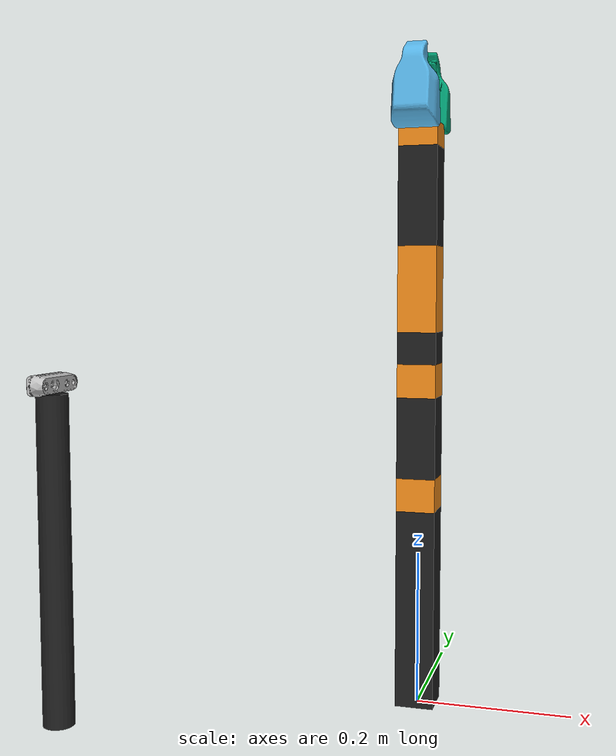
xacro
<?xml version="1.0"?>
<!-- Revolute-Revolute Manipulator -->
<robot name="rrbot" xmlns:xacro="http://www.ros.org/wiki/xacro">

  <!-- Constants for robot dimensions -->
  <xacro:property name="PI"        value="3.1415926535897931"/>
  <xacro:property name="radian"    value="1.57079632679"/>
  <xacro:property name="mass"      value="1" /> <!-- arbitrary value for mass -->
  <xacro:property name="width"     value="0.05" /> <!-- Square dimensions (widthxwidth) of beams -->
  <xacro:property name="height0"   value="0.260" /> <!-- Link 0 -->
  <xacro:property name="height1"   value="0.043" /> <!-- Link 1 -->
  <xacro:property name="height2"   value="0.105" /> <!-- Link 2 -->
  <xacro:property name="height3"   value="0.043" /> <!-- Link 3 -->
  <xacro:property name="height4"   value="0.041" /> <!-- Link 4 -->
  <xacro:property name="height5"   value="0.11" /> <!-- Link 5 -->
  <xacro:property name="height6"   value="0.125" /> <!-- Link 6 -->
  <xacro:property name="heightEEF" value="0.03" /> <!-- Link 7  EEF Link-->

  <!-- upper limit of the angle -->
  <xacro:property name="UpperLim_roll"  value="2.617" />
  <xacro:property name="UpperLim_joint1"  value="1.46239" />
  <xacro:property name="UpperLim_joint3"  value="2.26006" />
  <xacro:property name="UpperLim_joint5"  value="1.958382" />

  <xacro:property name="LowerLim_roll"  value= "-2.617" />
  <xacro:property name="LowerLim_joint1"  value="-1.8816" />
  <xacro:property name="LowerLim_joint3"  value="-1.7385" />
  <xacro:property name="LowerLim_joint5"  value="-1.677152" />

  <xacro:property name="heightEEF" value="0.03" /> <!-- Link 7  EEF Link-->

  <xacro:property name="damp_value"  value="0.0" /> <!-- Link 6 -->

  <xacro:property name="camera_offsetX" value="-0.42" />
  <xacro:property name="camera_offsetY" value="-0.20" />
  <xacro:property name="camera_offsetZ" value="0.431" />

  <xacro:property name="axel_offset" value="0" />
  <xacro:property name="axel_offset" value="0" />

  <xacro:macro name="default_inertial" params="mass">
    <inertial>
      <mass value="${mass}" />
      <inertia ixx="1.0" ixy="0.0" ixz="0.0" iyy="1.0" iyz="0.0" izz="1.0" />
    </inertial>
  </xacro:macro>

  <!-- Import all Gazebo-customization elements, including Gazebo colors -->
  <xacro:include filename="$(find rrbot_description)/urdf/rrbot.gazebo" />
  <!-- Import Rviz colors -->
  <xacro:include filename="$(find rrbot_description)/urdf/materials.xacro" />

  <!-- Used for fixing robot to Gazebo 'base_link' -->
  <link name="world"/>

  <joint name="fixed" type="fixed">
    <parent link="world"/>
    <child link="link0"/>
  </joint>

  <!-- Base Link -->
  <link name="link0">
    <collision>
      <origin xyz="0 0 ${height0/2}" rpy="0 0 0"/>
      <geometry>
	<box size="${width} ${width} ${height0}"/>
      </geometry>
    </collision>

    <visual>
      <origin xyz="0 0 ${height0/2}" rpy="0 0 0"/>
      <geometry>
	<box size="${width} ${width} ${height0}"/>
      </geometry>
      <material name="black"/>
    </visual>

    <inertial>
      <origin xyz="0 0 ${height0/2}" rpy="0 0 0"/>
      <mass value="${mass}"/>
      <inertia
	  ixx="${mass / 12.0 * (width*width + height0*height0)}" ixy="0.0" ixz="0.0"
	  iyy="${mass / 12.0 * (height0*height0 + width*width)}" iyz="0.0"
	  izz="${mass / 12.0 * (width*width + width*width)}"/>
    </inertial>
  </link>

  <joint name="joint0" type="revolute">
    <parent link="link0"/>
    <child link="link1"/>
    <origin xyz="0 0 ${height0}" rpy="0 0 0"/>
    <limit lower="${LowerLim_roll}" upper="${UpperLim_roll}" effort="0" velocity="0"/>
    <axis xyz="0 0 1"/>
    <dynamics damping="${damp_value}"/>
  </joint>

  <!-- 1st Link -->
  <link name="link1">
    <collision>
      <origin xyz="0 0 ${height1/2}" rpy="0 0 0"/>
      <geometry>
	<box size="${width} ${width} ${height1}"/>
      </geometry>
    </collision>

    <visual>
      <origin xyz="0 0 ${height1/2}" rpy="0 0 0"/>
      <geometry>
	<box size="${width} ${width} ${height1}"/>
      </geometry>
      <material name="orange"/>
    </visual>

    <inertial>
      <origin xyz="0 0 ${height1/2}" rpy="0 0 0"/>
      <mass value="${mass}"/>
      <inertia
	  ixx="${mass / 12.0 * (width*width + height1*height1)}" ixy="0.0" ixz="0.0"
	  iyy="${mass / 12.0 * (height1*height1 + width*width)}" iyz="0.0"
	  izz="${mass / 12.0 * (width*width + width*width)}"/>
    </inertial>
  </link>

  <joint name="joint1" type="revolute">
    <parent link="link1"/>
    <child link="link2"/>
    <origin xyz="0 0 ${height1 - axel_offset}" rpy="${radian} 0 0"/>
    <limit lower="${LowerLim_joint1}" upper="${UpperLim_joint1}" effort="0" velocity="0"/>
    <axis xyz="0 0 1"/>
    <dynamics damping="${damp_value}"/>
  </joint>

  <!-- 2nd Link -->
  <link name="link2">
    <collision>
      <origin xyz="0 ${height2/2 - axel_offset} 0" rpy="${radian} 0 0"/>
      <geometry>
	<box size="${width} ${width} ${height2}"/>
      </geometry>
    </collision>

    <visual>
      <origin xyz="0 ${height2/2 - axel_offset} 0" rpy="${radian} 0 0"/>
      <geometry>
	<box size="${width} ${width} ${height2}"/>
      </geometry>
      <material name="black"/>
    </visual>

    <inertial>
      <origin xyz="0 ${height2/2 - axel_offset} 0" rpy="${radian} 0 0"/>
      <mass value="${mass}"/>
      <inertia
	  ixx="${mass / 12.0 * (width*width + height2*height2)}" ixy="0.0" ixz="0.0"
	  iyy="${mass / 12.0 * (height2*height2 + width*width)}" iyz="0.0"
	  izz="${mass / 12.0 * (width*width + width*width)}"/>
    </inertial>
  </link>

  <joint name="joint2" type="revolute">
    <parent link="link2"/>
    <child link="link3"/>
    <origin xyz="0 ${height2 - axel_offset*2} 0" rpy="${-radian} 0 0"/>
    <limit lower="${LowerLim_roll}" upper="${UpperLim_roll}" effort="0" velocity="0"/>
    <axis xyz="0 0 1"/>
    <dynamics damping="${damp_value}"/>
  </joint>

  <!-- 3rd Link -->
  <link name="link3">
    <collision>
      <origin xyz="0 0 ${height3/2 - axel_offset}" rpy="0 0 0"/>
      <geometry>
	<box size="${width} ${width} ${height3}"/>
      </geometry>
    </collision>

    <visual>
      <origin xyz="0 0 ${height3/2 - axel_offset}" rpy="0 0 0"/>
      <geometry>
	<box size="${width} ${width} ${height3}"/>
      </geometry>
      <material name="orange"/>
    </visual>

    <inertial>
      <origin xyz="0 0 ${height3/2 - axel_offset}" rpy="0 0 0"/>
      <mass value="${mass}"/>
      <inertia
	  ixx="${mass / 12.0 * (width*width + height3*height3)}" ixy="0.0" ixz="0.0"
	  iyy="${mass / 12.0 * (height3*height3 + width*width)}" iyz="0.0"
	  izz="${mass / 12.0 * (width*width + width*width)}"/>
    </inertial>
  </link>

  <joint name="joint3" type="revolute">
    <parent link="link3"/>
    <child link="link4"/>
    <origin xyz="0 0 ${height3 - axel_offset*2}" rpy="${radian} 0 ${PI}"/>
    <limit lower="${LowerLim_joint3}" upper="${UpperLim_joint3}" effort="0" velocity="0"/>
    <axis xyz="0 0 1"/>
    <dynamics damping="${damp_value}"/>
  </joint>

  <!-- 4th Link -->
  <link name="link4">
    <collision>
      <origin xyz="0 ${height4/2 - axel_offset} 0" rpy="${-radian} 0 0"/>
      <geometry>
	<box size="${width} ${width} ${height4}"/>
      </geometry>
    </collision>

    <visual>
      <origin xyz="0 ${height4/2 - axel_offset} 0" rpy="${-radian} 0 0"/>
      <geometry>
	<box size="${width} ${width} ${height4}"/>
      </geometry>
      <material name="black"/>
    </visual>

    <inertial>
      <origin xyz="0 ${height4/2 - axel_offset} 0" rpy="${-radian} 0 0"/>
      <mass value="${mass}"/>
      <inertia
	  ixx="${mass / 12.0 * (width*width + height4*height4)}" ixy="0.0" ixz="0.0"
	  iyy="${mass / 12.0 * (height4*height4 + width*width)}" iyz="0.0"
	  izz="${mass / 12.0 * (width*width + width*width)}"/>
    </inertial>
  </link>

  <joint name="joint4" type="revolute">
    <parent link="link4"/>
    <child link="link5"/>
    <origin xyz="0 ${height4 - axel_offset*2} 0" rpy="${-radian} 0 0"/>
    <limit lower="${LowerLim_roll}" upper="${UpperLim_roll}" effort="0" velocity="0"/>
    <axis xyz="0 0 1"/>
    <dynamics damping="${damp_value}"/>
  </joint>

  <!-- 5th Link -->
  <link name="link5">
    <collision>
      <origin xyz="0 0 ${height5/2 - axel_offset}" rpy="0 0 0"/>
      <geometry>
	<box size="${width} ${width} ${height5}"/>
      </geometry>
    </collision>

    <visual>
      <origin xyz="0 0 ${height5/2 - axel_offset}" rpy="0 0 0"/>
      <geometry>
	<box size="${width} ${width} ${height5}"/>
      </geometry>
      <material name="orange"/>
    </visual>

    <inertial>
      <origin xyz="0 0 ${height5/2 - axel_offset}" rpy="0 0 0"/>
      <mass value="${mass}"/>
      <inertia
	  ixx="${mass / 12.0 * (width*width + height5*height5)}" ixy="0.0" ixz="0.0"
	  iyy="${mass / 12.0 * (height5*height5 + width*width)}" iyz="0.0"
	  izz="${mass / 12.0 * (width*width + width*width)}"/>
    </inertial>
  </link>

  <joint name="joint5" type="revolute">
    <parent link="link5"/>
    <child link="link6"/>
    <origin xyz="0 0 ${height5 - axel_offset}" rpy="${radian} 0 0"/>
    <limit lower="${LowerLim_joint5}" upper="${UpperLim_joint5}" effort="0" velocity="0"/>
    <axis xyz="0 0 1"/>
    <dynamics damping="${damp_value}"/>
  </joint>

  <!-- 6th Link -->
  <link name="link6">
    <collision>
      <origin xyz="0 ${height6/2 - axel_offset} 0" rpy="${-radian} 0 0"/>
      <geometry>
	<box size="${width} ${width} ${height6}"/>
      </geometry>
    </collision>

    <visual>
      <origin xyz="0 ${height6/2 - axel_offset} 0" rpy="${-radian} 0 0"/>
      <geometry>
	<box size="${width} ${width} ${height6}"/>
      </geometry>
      <material name="black"/>
    </visual>

    <inertial>
      <origin xyz="0 ${height6/2 - axel_offset} 0" rpy="${-radian} 0 0"/>
      <mass value="${mass}"/>
      <inertia
	  ixx="${mass / 12.0 * (width*width + height6*height5)}" ixy="0.0" ixz="0.0"
	  iyy="${mass / 12.0 * (height6*height6 + width*width)}" iyz="0.0"
	  izz="${mass / 12.0 * (width*width + width*width)}"/>
    </inertial>
  </link>

  <joint name="EEFjoint" type="fixed">
    <parent link="link6"/>
    <child link="EEFlink"/>
    <origin xyz="0 ${height6 - axel_offset} 0" rpy="${-radian} 0 0" />
  </joint>

  <!-- 7th EEF Link -->
  <link name="EEFlink">
    <collision>
      <origin xyz="0 0 ${heightEEF/2 - axel_offset}" rpy="0 0 0"/>
      <geometry>
	<box size="${width} ${width} ${heightEEF}"/>
      </geometry>
    </collision>

    <visual>
      <origin xyz="0 0 ${heightEEF/2 - axel_offset}" rpy="0 0 0"/>
      <geometry>
	<box size="${width} ${width} ${heightEEF}"/>
      </geometry>
      <material name="orange"/>
    </visual>

    <inertial>
      <origin xyz="0 0 ${heightEEF/2 - axel_offset}" rpy="0 0 0"/>
      <mass value="${mass}"/>
      <inertia
	  ixx="${mass / 12.0 * (width*width + heightEEF*heightEEF)}" ixy="0.0" ixz="0.0"
	  iyy="${mass / 12.0 * (heightEEF*heightEEF + width*width)}" iyz="0.0"
	  izz="${mass / 12.0 * (width*width + width*width)}"/>
    </inertial>
  </link>

  <!-- End Effector -->
  <!-- diagnal settting -->

  <!--  pararell setting-->
  <xacro:macro name="gripper" params="prefix reflect">
    <joint name="${prefix}_gripper_joint" type="revolute">

      <axis xyz="0 ${reflect} 0"/>
      <limit lower="${LowerLim_roll}" upper="${UpperLim_roll}" effort="0" velocity="0"/>
      <origin rpy="0 0 ${PI/2}" xyz="0 ${reflect*0.03} ${heightEEF}"/>
      <parent link="EEFlink"/>
      <child link="${prefix}_gripper"/>
      <dynamics damping="${damp_value}" friction="0.0"/>
    </joint>

    <link name="${prefix}_gripper">
      <visual>
        <origin rpy="${(reflect-1)/2*pi} ${-radian} ${radian-PI}" xyz="0 0 0"/>
        <geometry>
          <mesh filename="package://urdf_tutorial/meshes/l_finger.dae"/>
        </geometry>
      </visual>
      <collision>
        <geometry>
          <mesh filename="package://urdf_tutorial/meshes/l_finger.dae"/>
        </geometry>
        <origin rpy="${(reflect-1)/2*pi} ${-radian} ${radian-PI}" xyz="0 0 0"/>
      </collision>
      <xacro:default_inertial mass="0.05"/>
    </link>

    <transmission name="${prefix}_gripper_trans" type="SimpleTransmission">
      <type>transmission_interface/SimpleTransmission</type>
      <actuator name="${prefix}_gripper_motor">
        <mechanicalReduction>1</mechanicalReduction>
      </actuator>
      <joint name="${prefix}_gripper_joint">
        <hardwareInterface>PositionJointInterface</hardwareInterface>
      </joint>
    </transmission>
  </xacro:macro>

  <xacro:gripper prefix="left" reflect="1" />
  <xacro:gripper prefix="right" reflect="-1" />

  <joint name="camerabase_joint" type="fixed">
    <parent link="world"/>
    <child link="D435base_link"/>
    <origin xyz="${camera_offsetX} ${camera_offsetY} 0" rpy="0 0 0"/>
  </joint>

  <link name="D435base_link">
    <collision>
      <origin xyz="0 0 ${(camera_offsetZ-0.012)/2}" rpy="0 0 0"/>
      <geometry>
  <cylinder length="${camera_offsetZ-0.012}" radius="0.01"/>
      </geometry>
    </collision>

    <visual>
      <origin xyz="0 0 ${(camera_offsetZ-0.012)/2}" rpy="0 0 0"/>
      <geometry>
  <cylinder length="${camera_offsetZ-0.012}" radius="0.02"/>
      </geometry>
      <material name="black"/>
    </visual>
  </link>

  <joint name="D435joint" type="fixed">
    <parent link="D435base_link"/>
    <child link="D435_link"/>
    <origin xyz="0 0 ${camera_offsetZ}" rpy="${PI/2} 0 ${PI/2}"/>
  </joint>

  <link name="D435_link">
    <visual>
      <origin rpy="0 0 0" xyz="0 0 0.012"/>
      <geometry>
        <mesh filename="package://realsense2_description/meshes/d435.dae"/>
      </geometry>
    </visual>
    <collision>
      <geometry>
        <mesh filename="package://realsense2_description/meshes/d435.dae"/>
      </geometry>
      <origin rpy="0 0 0" xyz="0 0 0.012"/>
    </collision>
    <xacro:default_inertial mass="0.05"/>
  </link>

</robot>
